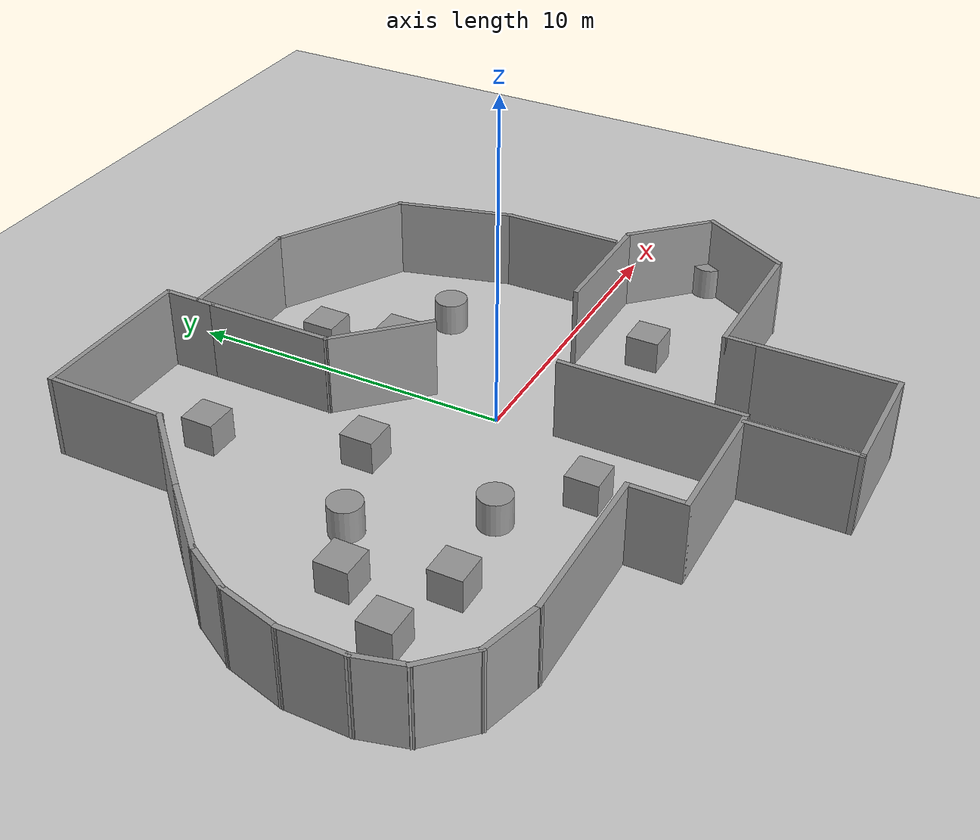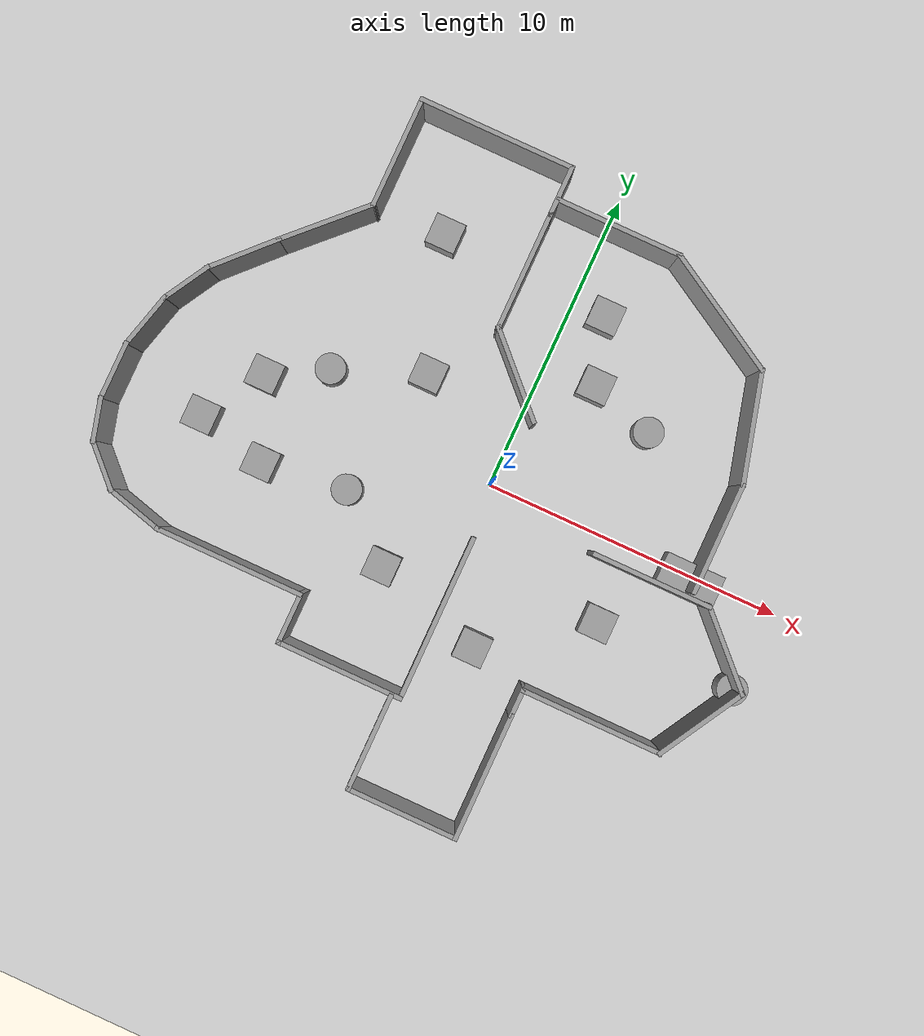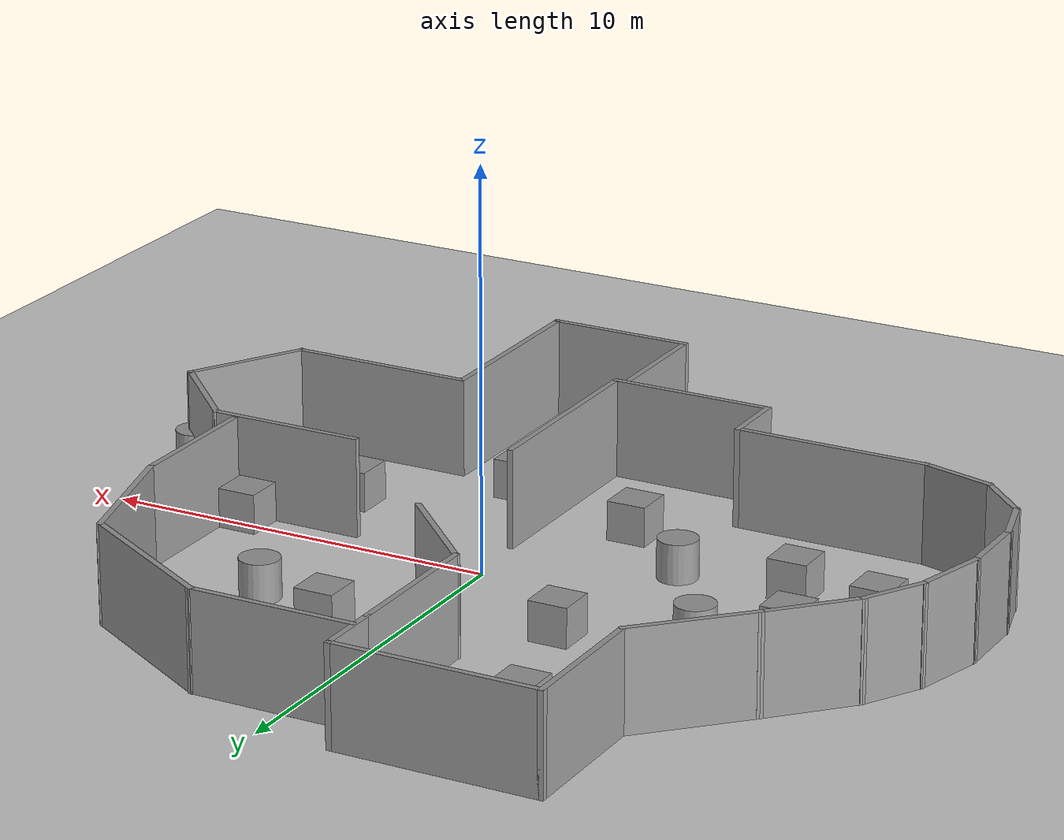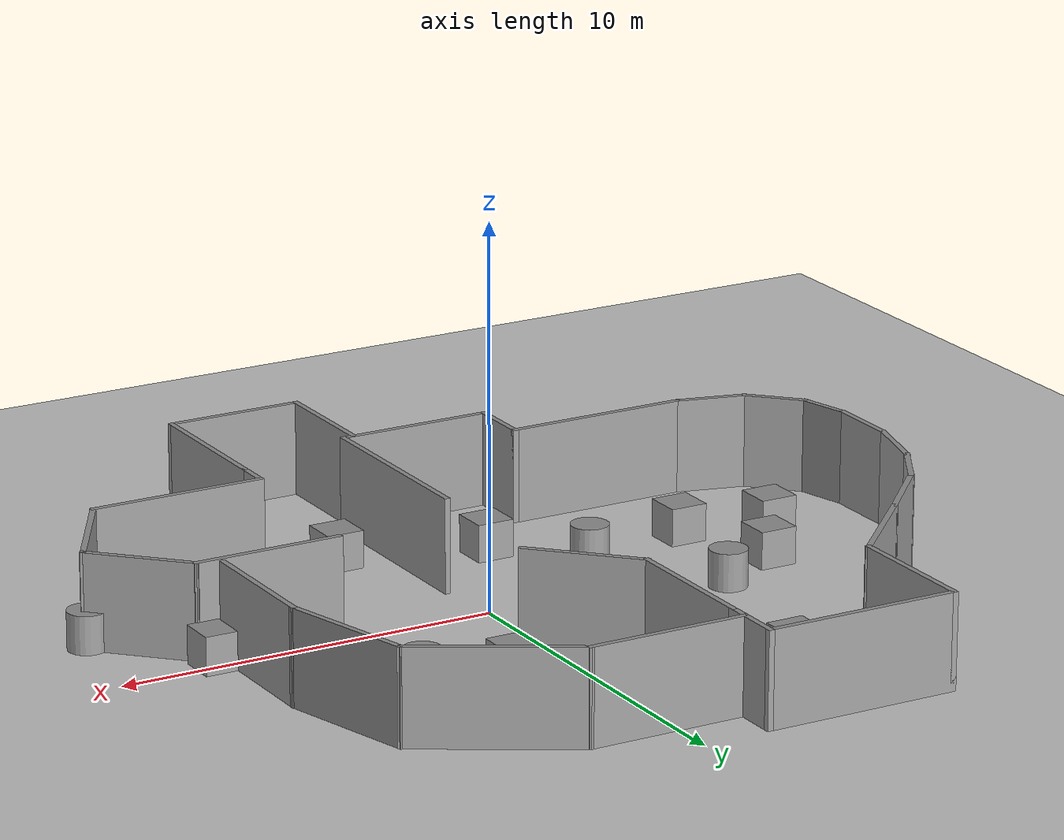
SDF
<sdf version="1.6">
 <world name="default">
  <light name="sun" type="directional">
   <pose>0 0 10 0 -0 0</pose>
   <diffuse>0.8 0.8 0.8 1</diffuse>
   <specular>0.2 0.2 0.2 1</specular>
   <attenuation>
    <range>1000</range>
    <constant>0.9</constant>
    <linear>0.01</linear>
    <quadratic>0.001</quadratic>
   </attenuation>
   <direction>-0.5 0.1 -0.9</direction>
  </light>
  <model name="ground_plane">
   <static>1</static>
   <link name="link">
    <collision name="collision">
     <geometry><plane><normal>0 0 1</normal><size>100 100</size></plane></geometry>
     <surface>
      <contact><collide_bitmask>65535</collide_bitmask></contact>
      <friction><ode><mu>100</mu><mu2>50</mu2></ode></friction>
     </surface>
    </collision>
    <visual name="visual">
     <cast_shadows>0</cast_shadows>
     <geometry><plane><normal>0 0 1</normal><size>100 100</size></plane></geometry>
     <material>
      <script><uri>file://media/materials/scripts/gazebo.material</uri><name>Gazebo/Grey</name></script>
     </material>
    </visual>
   </link>
  </model>
  <gravity>0 0 -9.8</gravity>
  <magnetic_field>6e-06 2.3e-05 -4.2e-05</magnetic_field>
  <atmosphere type="adiabatic"/>
  <physics name="default_physics" default="0" type="ode">
   <max_step_size>0.001</max_step_size>
   <real_time_factor>1</real_time_factor>
   <real_time_update_rate>1000</real_time_update_rate>
  </physics>
  <scene><ambient>0.4 0.4 0.4 1</ambient><background>0.7 0.7 0.7 1</background><shadows>1</shadows></scene>
  <audio><device>default</device></audio>
  <spherical_coordinates>
   <surface_model>EARTH_WGS84</surface_model>
   <latitude_deg>0</latitude_deg>
   <longitude_deg>0</longitude_deg>
   <elevation>0</elevation>
   <heading_deg>0</heading_deg>
  </spherical_coordinates>
  <model name="rounded_room">
   <pose>-1.16348 -0.21148 0 0 -0 0</pose>
   <link name="Wall_10">
    <collision name="Wall_10_Collision">
     <geometry><box><size>1.75 0.15 2.5</size></box></geometry>
     <pose>0 0 1.25 0 -0 0</pose>
    </collision>
    <visual name="Wall_10_Visual">
     <pose>0 0 1.25 0 -0 0</pose>
     <geometry><box><size>1.75 0.15 2.5</size></box></geometry>
     <material>
      <script><uri>file://media/materials/scripts/gazebo.material</uri><name>Gazebo/Grey</name></script>
      <ambient>1 1 1 1</ambient>
     </material>
     <meta><layer>0</layer></meta>
    </visual>
    <pose>-2.7281 -6.14179 0 0 -0 -1.5708</pose>
   </link>
   <link name="Wall_11">
    <collision name="Wall_11_Collision">
     <geometry><box><size>4.25 0.15 2.5</size></box></geometry>
     <pose>0 0 1.25 0 -0 0</pose>
    </collision>
    <visual name="Wall_11_Visual">
     <pose>0 0 1.25 0 -0 0</pose>
     <geometry><box><size>4.25 0.15 2.5</size></box></geometry>
     <material>
      <script><uri>file://media/materials/scripts/gazebo.material</uri><name>Gazebo/Grey</name></script>
      <ambient>1 1 1 1</ambient>
     </material>
     <meta><layer>0</layer></meta>
    </visual>
    <pose>-0.678096 -6.94179 0 0 -0 0</pose>
   </link>
   <link name="Wall_12">
    <collision name="Wall_12_Collision">
     <geometry><box><size>5.5 0.15 2.5</size></box></geometry>
     <pose>0 0 1.25 0 -0 0</pose>
    </collision>
    <visual name="Wall_12_Visual">
     <pose>0 0 1.25 0 -0 0</pose>
     <geometry><box><size>5.5 0.15 2.5</size></box></geometry>
     <material>
      <script><uri>file://media/materials/scripts/gazebo.material</uri><name>Gazebo/Grey</name></script>
      <ambient>1 1 1 1</ambient>
     </material>
     <meta><layer>0</layer></meta>
    </visual>
    <pose>1.3719 -4.26679 0 0 -0 1.5708</pose>
   </link>
   <link name="Wall_15">
    <collision name="Wall_15_Collision">
     <geometry><box><size>1 0.15 2.5</size></box></geometry>
     <pose>0 0 1.25 0 -0 0</pose>
    </collision>
    <visual name="Wall_15_Visual">
     <pose>0 0 1.25 0 -0 0</pose>
     <geometry><box><size>1 0.15 2.5</size></box></geometry>
     <material>
      <script><uri>file://media/materials/scripts/gazebo.material</uri><name>Gazebo/Grey</name></script>
      <ambient>1 1 1 1</ambient>
     </material>
     <meta><layer>0</layer></meta>
    </visual>
    <pose>4.68163 -5.57631 0 0 -0 1.5708</pose>
   </link>
   <link name="Wall_16">
    <collision name="Wall_16_Collision">
     <geometry><box><size>4.75 0.15 2.5</size></box></geometry>
     <pose>0 0 1.25 0 -0 0</pose>
    </collision>
    <visual name="Wall_16_Visual">
     <pose>0 0 1.25 0 -0 0</pose>
     <geometry><box><size>4.75 0.15 2.5</size></box></geometry>
     <material>
      <script><uri>file://media/materials/scripts/gazebo.material</uri><name>Gazebo/Grey</name></script>
      <ambient>1 1 1 1</ambient>
     </material>
     <meta><layer>0</layer></meta>
    </visual>
    <pose>6.98163 -5.15131 0 0 -0 0</pose>
   </link>
   <link name="Wall_17">
    <collision name="Wall_17_Collision">
     <geometry><box><size>3.25 0.15 2.5</size></box></geometry>
     <pose>0 0 1.25 0 -0 0</pose>
    </collision>
    <visual name="Wall_17_Visual">
     <pose>0 0 1.25 0 -0 0</pose>
     <geometry><box><size>3.25 0.15 2.5</size></box></geometry>
     <material>
      <script><uri>file://media/materials/scripts/gazebo.material</uri><name>Gazebo/Grey</name></script>
      <ambient>1 1 1 1</ambient>
     </material>
     <meta><layer>0</layer></meta>
    </visual>
    <pose>10.0566 -3.80897 0 0 -0 1.0472</pose>
   </link>
   <link name="Wall_18">
    <collision name="Wall_18_Collision">
     <geometry><box><size>3 0.15 2.5</size></box></geometry>
     <pose>0 0 1.25 0 -0 0</pose>
    </collision>
    <visual name="Wall_18_Visual">
     <pose>0 0 1.25 0 -0 0</pose>
     <geometry><box><size>3 0.15 2.5</size></box></geometry>
     <material>
      <script><uri>file://media/materials/scripts/gazebo.material</uri><name>Gazebo/Grey</name></script>
      <ambient>1 1 1 1</ambient>
     </material>
     <meta><layer>0</layer></meta>
    </visual>
    <pose>9.824 -1.45901 0 0 -0 2.35619</pose>
   </link>
   <link name="Wall_19">
    <collision name="Wall_19_Collision">
     <geometry><box><size>4 0.15 2.5</size></box></geometry>
     <pose>0 0 1.25 0 -0 0</pose>
    </collision>
    <visual name="Wall_19_Visual">
     <pose>0 0 1.25 0 -0 0</pose>
     <geometry><box><size>4 0.15 2.5</size></box></geometry>
     <material>
      <script><uri>file://media/materials/scripts/gazebo.material</uri><name>Gazebo/Grey</name></script>
      <ambient>1 1 1 1</ambient>
     </material>
     <meta><layer>0</layer></meta>
    </visual>
    <pose>6.89137 -0.451379 0 0 -0 3.14159</pose>
   </link>
   <link name="Wall_27">
    <collision name="Wall_27_Collision">
     <geometry><box><size>4 0.15 2.5</size></box></geometry>
     <pose>0 0 1.25 0 -0 0</pose>
    </collision>
    <visual name="Wall_27_Visual">
     <pose>0 0 1.25 0 -0 0</pose>
     <geometry><box><size>4 0.15 2.5</size></box></geometry>
     <material>
      <script><uri>file://media/materials/scripts/gazebo.material</uri><name>Gazebo/Grey</name></script>
      <ambient>1 1 1 1</ambient>
     </material>
     <meta><layer>0</layer></meta>
    </visual>
    <pose>-0.63632 6.57631 0 0 -0 1.5708</pose>
   </link>
   <link name="Wall_29">
    <collision name="Wall_29_Collision">
     <geometry><box><size>1.75 0.15 2.5</size></box></geometry>
     <pose>0 0 1.25 0 -0 0</pose>
    </collision>
    <visual name="Wall_29_Visual">
     <pose>0 0 1.25 0 -0 0</pose>
     <geometry><box><size>1.75 0.15 2.5</size></box></geometry>
     <material>
      <script><uri>file://media/materials/scripts/gazebo.material</uri><name>Gazebo/Grey</name></script>
      <ambient>1 1 1 1</ambient>
     </material>
     <meta><layer>0</layer></meta>
    </visual>
    <pose>-0.63632 9.30131 0 0 -0 1.5708</pose>
   </link>
   <link name="Wall_30">
    <collision name="Wall_30_Collision">
     <geometry><box><size>5.25 0.15 2.5</size></box></geometry>
     <pose>0 0 1.25 0 -0 0</pose>
    </collision>
    <visual name="Wall_30_Visual">
     <pose>0 0 1.25 0 -0 0</pose>
     <geometry><box><size>5.25 0.15 2.5</size></box></geometry>
     <material>
      <script><uri>file://media/materials/scripts/gazebo.material</uri><name>Gazebo/Grey</name></script>
      <ambient>1 1 1 1</ambient>
     </material>
     <meta><layer>0</layer></meta>
    </visual>
    <pose>-3.18632 10.1013 0 0 -0 3.14159</pose>
   </link>
   <link name="Wall_31">
    <collision name="Wall_31_Collision">
     <geometry><box><size>3.75 0.15 2.5</size></box></geometry>
     <pose>0 0 1.25 0 -0 0</pose>
    </collision>
    <visual name="Wall_31_Visual">
     <pose>0 0 1.25 0 -0 0</pose>
     <geometry><box><size>3.75 0.15 2.5</size></box></geometry>
     <material>
      <script><uri>file://media/materials/scripts/gazebo.material</uri><name>Gazebo/Grey</name></script>
      <ambient>1 1 1 1</ambient>
     </material>
     <meta><layer>0</layer></meta>
    </visual>
    <pose>-5.73632 8.30131 0 0 -0 -1.5708</pose>
   </link>
   <link name="Wall_32">
    <collision name="Wall_32_Collision">
     <geometry><box><size>3.25 0.15 2.5</size></box></geometry>
     <pose>0 0 1.25 0 -0 0</pose>
    </collision>
    <visual name="Wall_32_Visual">
     <pose>0 0 1.25 0 -0 0</pose>
     <geometry><box><size>3.25 0.15 2.5</size></box></geometry>
     <material>
      <script><uri>file://media/materials/scripts/gazebo.material</uri><name>Gazebo/Grey</name></script>
      <ambient>1 1 1 1</ambient>
     </material>
     <meta><layer>0</layer></meta>
    </visual>
    <pose>-6.83234 5.4053 0 0 -0 -2.35619</pose>
   </link>
   <link name="Wall_36">
    <collision name="Wall_36_Collision">
     <geometry><box><size>3.25 0.15 2.5</size></box></geometry>
     <pose>0 0 1.25 0 -0 0</pose>
    </collision>
    <visual name="Wall_36_Visual">
     <pose>0 0 1.25 0 -0 0</pose>
     <geometry><box><size>3.25 0.15 2.5</size></box></geometry>
     <material>
      <script><uri>file://media/materials/scripts/gazebo.material</uri><name>Gazebo/Grey</name></script>
      <ambient>1 1 1 1</ambient>
     </material>
     <meta><layer>0</layer></meta>
    </visual>
    <pose>0.459695 3.5553 0 0 -0 -0.785398</pose>
   </link>
   <link name="Wall_38">
    <collision name="Wall_38_Collision">
     <geometry><box><size>4.25 0.15 2.5</size></box></geometry>
     <pose>0 0 1.25 0 -0 0</pose>
    </collision>
    <visual name="Wall_38_Visual">
     <pose>0 0 1.25 0 -0 0</pose>
     <geometry><box><size>4.25 0.15 2.5</size></box></geometry>
     <material>
      <script><uri>file://media/materials/scripts/gazebo.material</uri><name>Gazebo/Grey</name></script>
      <ambient>1 1 1 1</ambient>
     </material>
     <meta><layer>0</layer></meta>
    </visual>
    <pose>1.45958 9.0211 0 0 -0 0</pose>
   </link>
   <link name="Wall_39">
    <collision name="Wall_39_Collision">
     <geometry><box><size>4.5 0.15 2.5</size></box></geometry>
     <pose>0 0 1.25 0 -0 0</pose>
    </collision>
    <visual name="Wall_39_Visual">
     <pose>0 0 1.25 0 -0 0</pose>
     <geometry><box><size>4.5 0.15 2.5</size></box></geometry>
     <material>
      <script><uri>file://media/materials/scripts/gazebo.material</uri><name>Gazebo/Grey</name></script>
      <ambient>1 1 1 1</ambient>
     </material>
     <meta><layer>0</layer></meta>
    </visual>
    <pose>5.39319 7.9336 0 0 -0 -0.523599</pose>
   </link>
   <link name="Wall_40">
    <collision name="Wall_40_Collision">
     <geometry><box><size>3.75 0.15 2.5</size></box></geometry>
     <pose>0 0 1.25 0 -0 0</pose>
    </collision>
    <visual name="Wall_40_Visual">
     <pose>0 0 1.25 0 -0 0</pose>
     <geometry><box><size>3.75 0.15 2.5</size></box></geometry>
     <material>
      <script><uri>file://media/materials/scripts/gazebo.material</uri><name>Gazebo/Grey</name></script>
      <ambient>1 1 1 1</ambient>
     </material>
     <meta><layer>0</layer></meta>
    </visual>
    <pose>7.74267 5.10743 0 0 -0 -1.309</pose>
   </link>
   <link name="Wall_41">
    <collision name="Wall_41_Collision">
     <geometry><box><size>3.75 0.15 2.5</size></box></geometry>
     <pose>0 0 1.25 0 -0 0</pose>
    </collision>
    <visual name="Wall_41_Visual">
     <pose>0 0 1.25 0 -0 0</pose>
     <geometry><box><size>3.75 0.15 2.5</size></box></geometry>
     <material>
      <script><uri>file://media/materials/scripts/gazebo.material</uri><name>Gazebo/Grey</name></script>
      <ambient>1 1 1 1</ambient>
     </material>
     <meta><layer>0</layer></meta>
    </visual>
    <pose>8.20854 1.56877 0 0 -0 -1.5708</pose>
   </link>
   <link name="Wall_52">
    <collision name="Wall_52_Collision">
     <geometry><box><size>4.25 0.15 2.5</size></box></geometry>
     <pose>0 0 1.25 0 -0 0</pose>
    </collision>
    <visual name="Wall_52_Visual">
     <pose>0 0 1.25 0 -0 0</pose>
     <geometry><box><size>4.25 0.15 2.5</size></box></geometry>
     <material>
      <script><uri>file://media/materials/scripts/gazebo.material</uri><name>Gazebo/Grey</name></script>
      <ambient>1 1 1 1</ambient>
     </material>
     <meta><layer>0</layer></meta>
    </visual>
    <pose>4.68163 -8.05131 0 0 -0 -1.5708</pose>
   </link>
   <link name="Wall_53">
    <collision name="Wall_53_Collision">
     <geometry><box><size>3.75 0.15 2.5</size></box></geometry>
     <pose>0 0 1.25 0 -0 0</pose>
    </collision>
    <visual name="Wall_53_Visual">
     <pose>0 0 1.25 0 -0 0</pose>
     <geometry><box><size>3.75 0.15 2.5</size></box></geometry>
     <material>
      <script><uri>file://media/materials/scripts/gazebo.material</uri><name>Gazebo/Grey</name></script>
      <ambient>1 1 1 1</ambient>
     </material>
     <meta><layer>0</layer></meta>
    </visual>
    <pose>2.88163 -10.1013 0 0 -0 3.14159</pose>
   </link>
   <link name="Wall_54">
    <collision name="Wall_54_Collision">
     <geometry><box><size>3.25 0.15 2.5</size></box></geometry>
     <pose>0 0 1.25 0 -0 0</pose>
    </collision>
    <visual name="Wall_54_Visual">
     <pose>0 0 1.25 0 -0 0</pose>
     <geometry><box><size>3.25 0.15 2.5</size></box></geometry>
     <material>
      <script><uri>file://media/materials/scripts/gazebo.material</uri><name>Gazebo/Grey</name></script>
      <ambient>1 1 1 1</ambient>
     </material>
     <meta><layer>0</layer></meta>
    </visual>
    <pose>1.08163 -8.55131 0 0 -0 1.5708</pose>
   </link>
   <link name="Wall_56">
    <collision name="Wall_56_Collision">
     <geometry><box><size>5 0.15 2.5</size></box></geometry>
     <pose>0 0 1.25 0 -0 0</pose>
    </collision>
    <visual name="Wall_56_Visual">
     <pose>0 0 1.25 0 -0 0</pose>
     <geometry><box><size>5 0.15 2.5</size></box></geometry>
     <material>
      <script><uri>file://media/materials/scripts/gazebo.material</uri><name>Gazebo/Grey</name></script>
      <ambient>1 1 1 1</ambient>
     </material>
     <meta><layer>0</layer></meta>
    </visual>
    <pose>-5.1531 -5.34179 0 0 -0 3.14159</pose>
   </link>
   <link name="Wall_57">
    <collision name="Wall_57_Collision">
     <geometry><box><size>2 0.15 2.5</size></box></geometry>
     <pose>0 0 1.25 0 -0 0</pose>
    </collision>
    <visual name="Wall_57_Visual">
     <pose>0 0 1.25 0 -0 0</pose>
     <geometry><box><size>2 0.15 2.5</size></box></geometry>
     <material>
      <script><uri>file://media/materials/scripts/gazebo.material</uri><name>Gazebo/Grey</name></script>
      <ambient>1 1 1 1</ambient>
     </material>
     <meta><layer>0</layer></meta>
    </visual>
    <pose>-8.47158 -5.10238 0 0 -0 2.87979</pose>
   </link>
   <link name="Wall_58">
    <collision name="Wall_58_Collision">
     <geometry><box><size>1.75 0.15 2.5</size></box></geometry>
     <pose>0 0 1.25 0 -0 0</pose>
    </collision>
    <visual name="Wall_58_Visual">
     <pose>0 0 1.25 0 -0 0</pose>
     <geometry><box><size>1.75 0.15 2.5</size></box></geometry>
     <material>
      <script><uri>file://media/materials/scripts/gazebo.material</uri><name>Gazebo/Grey</name></script>
      <ambient>1 1 1 1</ambient>
     </material>
     <meta><layer>0</layer></meta>
    </visual>
    <pose>-9.93074 -4.29729 0 0 -0 2.35619</pose>
   </link>
   <link name="Wall_59">
    <collision name="Wall_59_Collision">
     <geometry><box><size>1.5 0.15 2.5</size></box></geometry>
     <pose>0 0 1.25 0 -0 0</pose>
    </collision>
    <visual name="Wall_59_Visual">
     <pose>0 0 1.25 0 -0 0</pose>
     <geometry><box><size>1.5 0.15 2.5</size></box></geometry>
     <material>
      <script><uri>file://media/materials/scripts/gazebo.material</uri><name>Gazebo/Grey</name></script>
      <ambient>1 1 1 1</ambient>
     </material>
     <meta><layer>0</layer></meta>
    </visual>
    <pose>-10.6711 -3.0796 0 0 -0 1.8326</pose>
   </link>
   <link name="Wall_60">
    <collision name="Wall_60_Collision">
     <geometry><box><size>2 0.15 2.5</size></box></geometry>
     <pose>0 0 1.25 0 -0 0</pose>
    </collision>
    <visual name="Wall_60_Visual">
     <pose>0 0 1.25 0 -0 0</pose>
     <geometry><box><size>2 0.15 2.5</size></box></geometry>
     <material>
      <script><uri>file://media/materials/scripts/gazebo.material</uri><name>Gazebo/Grey</name></script>
      <ambient>1 1 1 1</ambient>
     </material>
     <meta><layer>0</layer></meta>
    </visual>
    <pose>-10.8458 -1.5026 0 0 -0 1.5708</pose>
   </link>
   <link name="Wall_61">
    <collision name="Wall_61_Collision">
     <geometry><box><size>2 0.15 2.5</size></box></geometry>
     <pose>0 0 1.25 0 -0 0</pose>
    </collision>
    <visual name="Wall_61_Visual">
     <pose>0 0 1.25 0 -0 0</pose>
     <geometry><box><size>2 0.15 2.5</size></box></geometry>
     <material>
      <script><uri>file://media/materials/scripts/gazebo.material</uri><name>Gazebo/Grey</name></script>
      <ambient>1 1 1 1</ambient>
     </material>
     <meta><layer>0</layer></meta>
    </visual>
    <pose>-10.6064 0.315877 0 0 -0 1.309</pose>
   </link>
   <link name="Wall_62">
    <collision name="Wall_62_Collision">
     <geometry><box><size>1.75 0.15 2.5</size></box></geometry>
     <pose>0 0 1.25 0 -0 0</pose>
    </collision>
    <visual name="Wall_62_Visual">
     <pose>0 0 1.25 0 -0 0</pose>
     <geometry><box><size>1.75 0.15 2.5</size></box></geometry>
     <material>
      <script><uri>file://media/materials/scripts/gazebo.material</uri><name>Gazebo/Grey</name></script>
      <ambient>1 1 1 1</ambient>
     </material>
     <meta><layer>0</layer></meta>
    </visual>
    <pose>-9.96702 1.90218 0 0 -0 1.0472</pose>
   </link>
   <link name="Wall_63">
    <collision name="Wall_63_Collision">
     <geometry><box><size>2.5215 0.15 2.5</size></box></geometry>
     <pose>0 0 1.25 0 -0 0</pose>
    </collision>
    <visual name="Wall_63_Visual">
     <pose>0 0 1.25 0 -0 0</pose>
     <geometry><box><size>2.5215 0.15 2.5</size></box></geometry>
     <material>
      <script><uri>file://media/materials/scripts/gazebo.material</uri><name>Gazebo/Grey</name></script>
      <ambient>1 1 1 1</ambient>
     </material>
     <meta><layer>0</layer></meta>
    </visual>
    <pose>-8.74769 3.45214 0 0 -0 0.807946</pose>
   </link>
   <static>1</static>
  </model>
  <model name="unit_cylinder">
   <pose>-4.05892 -2.05374 0.499993 -3e-06 -4e-06 -0</pose>
   <link name="link">
    <inertial>
     <mass>1</mass>
     <inertia><ixx>0.145833</ixx><ixy>0</ixy><ixz>0</ixz><iyy>0.145833</iyy><iyz>0</iyz><izz>0.125</izz></inertia>
    </inertial>
    <collision name="collision">
     <geometry><cylinder><radius>0.5</radius><length>1</length></cylinder></geometry>
    </collision>
    <visual name="visual">
     <geometry><cylinder><radius>0.5</radius><length>1</length></cylinder></geometry>
     <material>
      <script><name>Gazebo/Grey</name><uri>file://media/materials/scripts/gazebo.material</uri></script>
     </material>
    </visual>
   </link>
  </model>
  <model name="unit_cylinder_0">
   <pose>-6.126 1.20512 0.499997 3e-06 4e-06 -0</pose>
   <link name="link">
    <inertial>
     <mass>1</mass>
     <inertia><ixx>0.145833</ixx><ixy>0</ixy><ixz>0</ixz><iyy>0.145833</iyy><iyz>0</iyz><izz>0.125</izz></inertia>
    </inertial>
    <collision name="collision">
     <geometry><cylinder><radius>0.5</radius><length>1</length></cylinder></geometry>
    </collision>
    <visual name="visual">
     <geometry><cylinder><radius>0.5</radius><length>1</length></cylinder></geometry>
     <material>
      <script><name>Gazebo/Grey</name><uri>file://media/materials/scripts/gazebo.material</uri></script>
     </material>
    </visual>
   </link>
  </model>
  <model name="unit_cylinder_1">
   <pose>3.8552 3.5656 0.499993 -3e-06 -4e-06 -0</pose>
   <link name="link">
    <inertial>
     <mass>1</mass>
     <inertia><ixx>0.145833</ixx><ixy>0</ixy><ixz>0</ixz><iyy>0.145833</iyy><iyz>0</iyz><izz>0.125</izz></inertia>
    </inertial>
    <collision name="collision">
     <geometry><cylinder><radius>0.5</radius><length>1</length></cylinder></geometry>
    </collision>
    <visual name="visual">
     <geometry><cylinder><radius>0.5</radius><length>1</length></cylinder></geometry>
     <material>
      <script><name>Gazebo/Grey</name><uri>file://media/materials/scripts/gazebo.material</uri></script>
     </material>
    </visual>
   </link>
  </model>
  <model name="unit_box">
   <pose>1.0964 6.36821 0.5 0 -0 0</pose>
   <link name="link">
    <inertial>
     <mass>1</mass>
     <inertia>
      <ixx>0.166667</ixx>
      <ixy>0</ixy>
      <ixz>0</ixz>
      <iyy>0.166667</iyy>
      <iyz>0</iyz>
      <izz>0.166667</izz>
     </inertia>
    </inertial>
    <collision name="collision"><geometry><box><size>1 1 1</size></box></geometry></collision>
    <visual name="visual">
     <geometry><box><size>1 1 1</size></box></geometry>
     <material>
      <script><name>Gazebo/Grey</name><uri>file://media/materials/scripts/gazebo.material</uri></script>
     </material>
    </visual>
   </link>
  </model>
  <model name="unit_box_0">
   <pose>1.73344 4.23788 0.5 0 -0 0</pose>
   <link name="link">
    <inertial>
     <mass>1</mass>
     <inertia>
      <ixx>0.166667</ixx>
      <ixy>0</ixy>
      <ixz>0</ixz>
      <iyy>0.166667</iyy>
      <iyz>0</iyz>
      <izz>0.166667</izz>
     </inertia>
    </inertial>
    <collision name="collision"><geometry><box><size>1 1 1</size></box></geometry></collision>
    <visual name="visual">
     <geometry><box><size>1 1 1</size></box></geometry>
     <material>
      <script><name>Gazebo/Grey</name><uri>file://media/materials/scripts/gazebo.material</uri></script>
     </material>
    </visual>
   </link>
  </model>
  <model name="unit_box_1">
   <pose>-4.61906 6.6298 0.5 0 -0 0</pose>
   <link name="link">
    <inertial>
     <mass>1</mass>
     <inertia>
      <ixx>0.166667</ixx>
      <ixy>0</ixy>
      <ixz>0</ixz>
      <iyy>0.166667</iyy>
      <iyz>0</iyz>
      <izz>0.166667</izz>
     </inertia>
    </inertial>
    <collision name="collision"><geometry><box><size>1 1 1</size></box></geometry></collision>
    <visual name="visual">
     <geometry><box><size>1 1 1</size></box></geometry>
     <material>
      <script><name>Gazebo/Grey</name><uri>file://media/materials/scripts/gazebo.material</uri></script>
     </material>
    </visual>
   </link>
  </model>
  <model name="unit_box_2">
   <pose>-3.24451 2.36249 0.5 0 -0 0</pose>
   <link name="link">
    <inertial>
     <mass>1</mass>
     <inertia>
      <ixx>0.166667</ixx>
      <ixy>0</ixy>
      <ixz>0</ixz>
      <iyy>0.166667</iyy>
      <iyz>0</iyz>
      <izz>0.166667</izz>
     </inertia>
    </inertial>
    <collision name="collision"><geometry><box><size>1 1 1</size></box></geometry></collision>
    <visual name="visual">
     <geometry><box><size>1 1 1</size></box></geometry>
     <material>
      <script><name>Gazebo/Grey</name><uri>file://media/materials/scripts/gazebo.material</uri></script>
     </material>
    </visual>
   </link>
  </model>
  <model name="unit_box_3">
   <pose>4.89504 -2.57683 0.5 0 -0 0</pose>
   <link name="link">
    <inertial>
     <mass>1</mass>
     <inertia>
      <ixx>0.166667</ixx>
      <ixy>0</ixy>
      <ixz>0</ixz>
      <iyy>0.166667</iyy>
      <iyz>0</iyz>
      <izz>0.166667</izz>
     </inertia>
    </inertial>
    <collision name="collision"><geometry><box><size>1 1 1</size></box></geometry></collision>
    <visual name="visual">
     <geometry><box><size>1 1 1</size></box></geometry>
     <material>
      <script><name>Gazebo/Grey</name><uri>file://media/materials/scripts/gazebo.material</uri></script>
     </material>
    </visual>
   </link>
  </model>
  <model name="unit_box_4">
   <pose>-7.95298 0.179477 0.5 0 -0 0</pose>
   <link name="link">
    <inertial>
     <mass>1</mass>
     <inertia>
      <ixx>0.166667</ixx>
      <ixy>0</ixy>
      <ixz>0</ixz>
      <iyy>0.166667</iyy>
      <iyz>0</iyz>
      <izz>0.166667</izz>
     </inertia>
    </inertial>
    <collision name="collision"><geometry><box><size>1 1 1</size></box></geometry></collision>
    <visual name="visual">
     <geometry><box><size>1 1 1</size></box></geometry>
     <material>
      <script><name>Gazebo/Grey</name><uri>file://media/materials/scripts/gazebo.material</uri></script>
     </material>
    </visual>
   </link>
  </model>
  <model name="unit_box_5">
   <pose>-6.90601 -2.40648 0.5 0 -0 0</pose>
   <link name="link">
    <inertial>
     <mass>1</mass>
     <inertia>
      <ixx>0.166667</ixx>
      <ixy>0</ixy>
      <ixz>0</ixz>
      <iyy>0.166667</iyy>
      <iyz>0</iyz>
      <izz>0.166667</izz>
     </inertia>
    </inertial>
    <collision name="collision"><geometry><box><size>1 1 1</size></box></geometry></collision>
    <visual name="visual">
     <geometry><box><size>1 1 1</size></box></geometry>
     <material>
      <script><name>Gazebo/Grey</name><uri>file://media/materials/scripts/gazebo.material</uri></script>
     </material>
    </visual>
   </link>
  </model>
  <model name="unit_box_6">
   <pose>1.62509 -4.91909 0.5 0 -0 0</pose>
   <link name="link">
    <inertial>
     <mass>1</mass>
     <inertia>
      <ixx>0.166667</ixx>
      <ixy>0</ixy>
      <ixz>0</ixz>
      <iyy>0.166667</iyy>
      <iyz>0</iyz>
      <izz>0.166667</izz>
     </inertia>
    </inertial>
    <collision name="collision"><geometry><box><size>1 1 1</size></box></geometry></collision>
    <visual name="visual">
     <geometry><box><size>1 1 1</size></box></geometry>
     <material>
      <script><name>Gazebo/Grey</name><uri>file://media/materials/scripts/gazebo.material</uri></script>
     </material>
    </visual>
   </link>
  </model>
  <model name="unit_box_7">
   <pose>-2.05612 -3.7928 0.5 0 -0 0</pose>
   <link name="link">
    <inertial>
     <mass>1</mass>
     <inertia>
      <ixx>0.166667</ixx>
      <ixy>0</ixy>
      <ixz>0</ixz>
      <iyy>0.166667</iyy>
      <iyz>0</iyz>
      <izz>0.166667</izz>
     </inertia>
    </inertial>
    <collision name="collision"><geometry><box><size>1 1 1</size></box></geometry></collision>
    <visual name="visual">
     <geometry><box><size>1 1 1</size></box></geometry>
     <material>
      <script><name>Gazebo/Grey</name><uri>file://media/materials/scripts/gazebo.material</uri></script>
     </material>
    </visual>
   </link>
  </model>
  <model name="unit_box_8">
   <pose>-9.24781 -1.82562 0.5 0 -0 0</pose>
   <link name="link">
    <inertial>
     <mass>1</mass>
     <inertia>
      <ixx>0.166667</ixx>
      <ixy>0</ixy>
      <ixz>0</ixz>
      <iyy>0.166667</iyy>
      <iyz>0</iyz>
      <izz>0.166667</izz>
     </inertia>
    </inertial>
    <collision name="collision"><geometry><box><size>1 1 1</size></box></geometry></collision>
    <visual name="visual">
     <geometry><box><size>1 1 1</size></box></geometry>
     <material>
      <script><name>Gazebo/Grey</name><uri>file://media/materials/scripts/gazebo.material</uri></script>
     </material>
    </visual>
   </link>
  </model>
  <model name="unit_box_9">
   <pose>7.46427 -0.1 0.5 0 -0 0</pose>
   <link name="link">
    <inertial>
     <mass>1</mass>
     <inertia>
      <ixx>0.166667</ixx>
      <ixy>0</ixy>
      <ixz>0</ixz>
      <iyy>0.166667</iyy>
      <iyz>0</iyz>
      <izz>0.166667</izz>
     </inertia>
    </inertial>
    <collision name="collision"><geometry><box><size>1 1 1</size></box></geometry></collision>
    <visual name="visual">
     <geometry><box><size>1 1 1</size></box></geometry>
     <material>
      <script><name>Gazebo/Grey</name><uri>file://media/materials/scripts/gazebo.material</uri></script>
     </material>
    </visual>
   </link>
  </model>
  <model name="unit_box_10">
   <pose>6.48614 -0.097347 0.5 0 -0 0</pose>
   <link name="link">
    <inertial>
     <mass>1</mass>
     <inertia>
      <ixx>0.166667</ixx>
      <ixy>0</ixy>
      <ixz>0</ixz>
      <iyy>0.166667</iyy>
      <iyz>0</iyz>
      <izz>0.166667</izz>
     </inertia>
    </inertial>
    <collision name="collision"><geometry><box><size>1 1 1</size></box></geometry></collision>
    <visual name="visual">
     <geometry><box><size>1 1 1</size></box></geometry>
     <material>
      <script><name>Gazebo/Grey</name><uri>file://media/materials/scripts/gazebo.material</uri></script>
     </material>
    </visual>
   </link>
  </model>
  <model name="unit_cylinder_2">
   <pose>9.59647 -2.71424 0.5 0 -0 0</pose>
   <link name="link">
    <inertial>
     <mass>1</mass>
     <inertia><ixx>0.145833</ixx><ixy>0</ixy><ixz>0</ixz><iyy>0.145833</iyy><iyz>0</iyz><izz>0.125</izz></inertia>
    </inertial>
    <collision name="collision">
     <geometry><cylinder><radius>0.5</radius><length>1</length></cylinder></geometry>
    </collision>
    <visual name="visual">
     <geometry><cylinder><radius>0.5</radius><length>1</length></cylinder></geometry>
     <material>
      <script><name>Gazebo/Grey</name><uri>file://media/materials/scripts/gazebo.material</uri></script>
     </material>
    </visual>
   </link>
  </model>
 </world>
</sdf>
